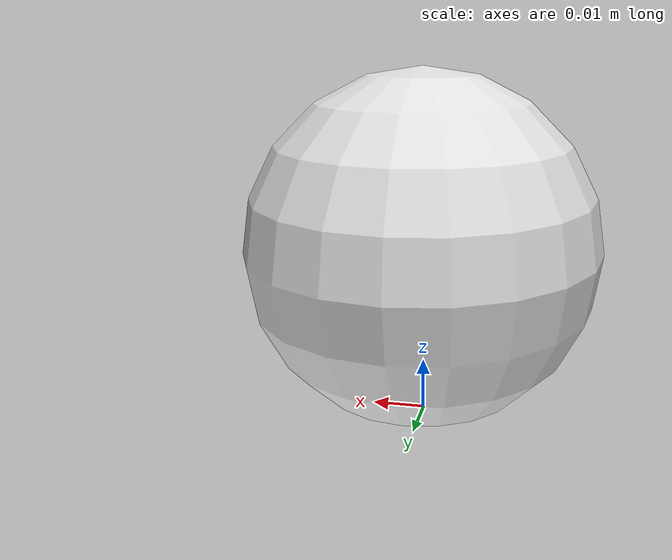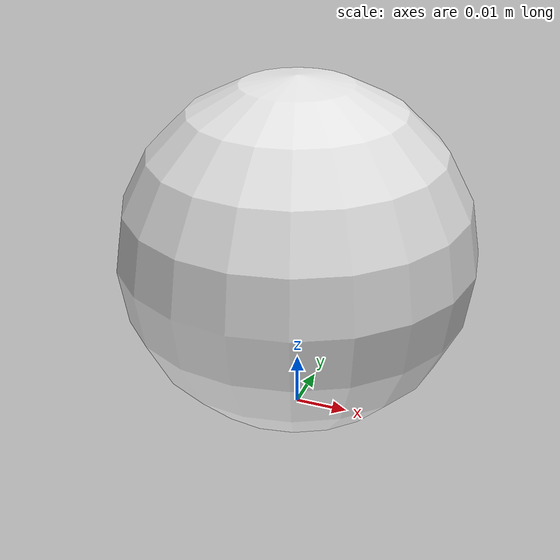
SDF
<?xml version="1.0"?>
<sdf version="1.6">
  <model name="tennis_ball">
    <static>false</static>
    <link name="link">
      <collision name="collision">
        <geometry>
          <sphere>
            <radius>0.033</radius>
          </sphere>
        </geometry>
        <surface>
          <contact>
            <ode/>
          </contact>
        </surface>
      </collision>
      <visual name="visual">
        <geometry>
          <sphere>
            <radius>0.033</radius>
          </sphere>
        </geometry>
        <material>
          <ambient>0.5 0.5 0.5 1</ambient>
          <diffuse>0.9 0.9 0.9 1</diffuse>
          <specular>0.5 0.5 0.5 1</specular>
        </material>
      </visual>
      <pose>0 0 0.033 0 0 0</pose>
    </link>
  </model>
</sdf>
